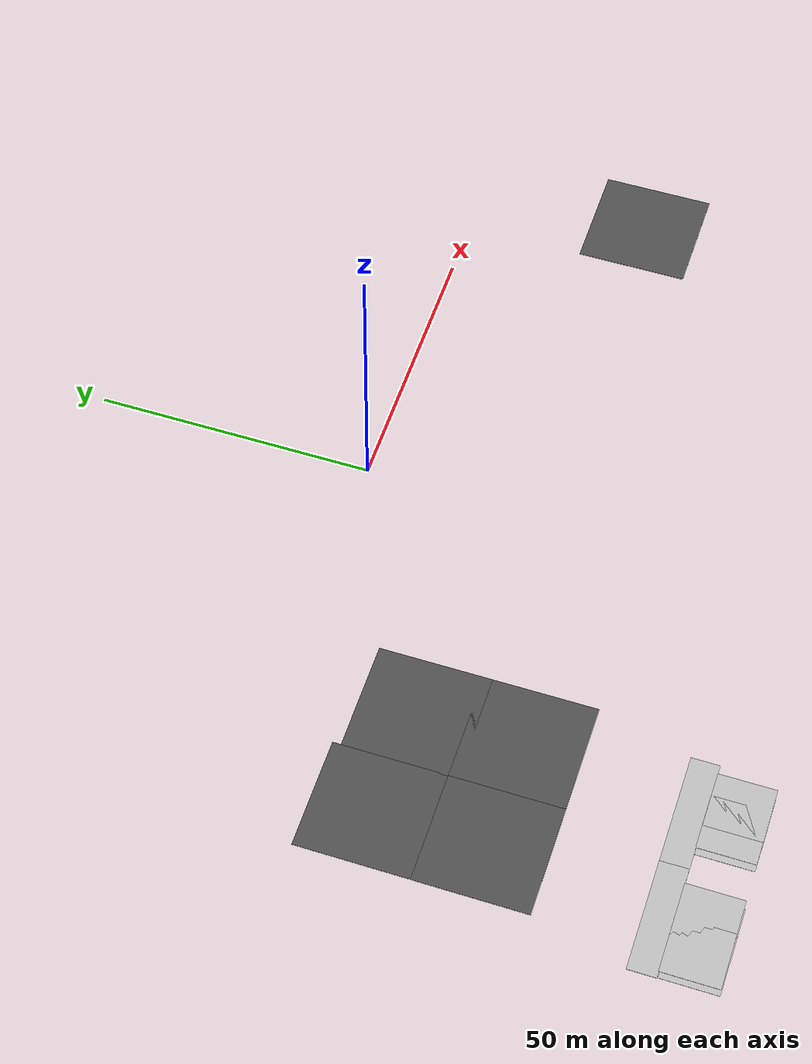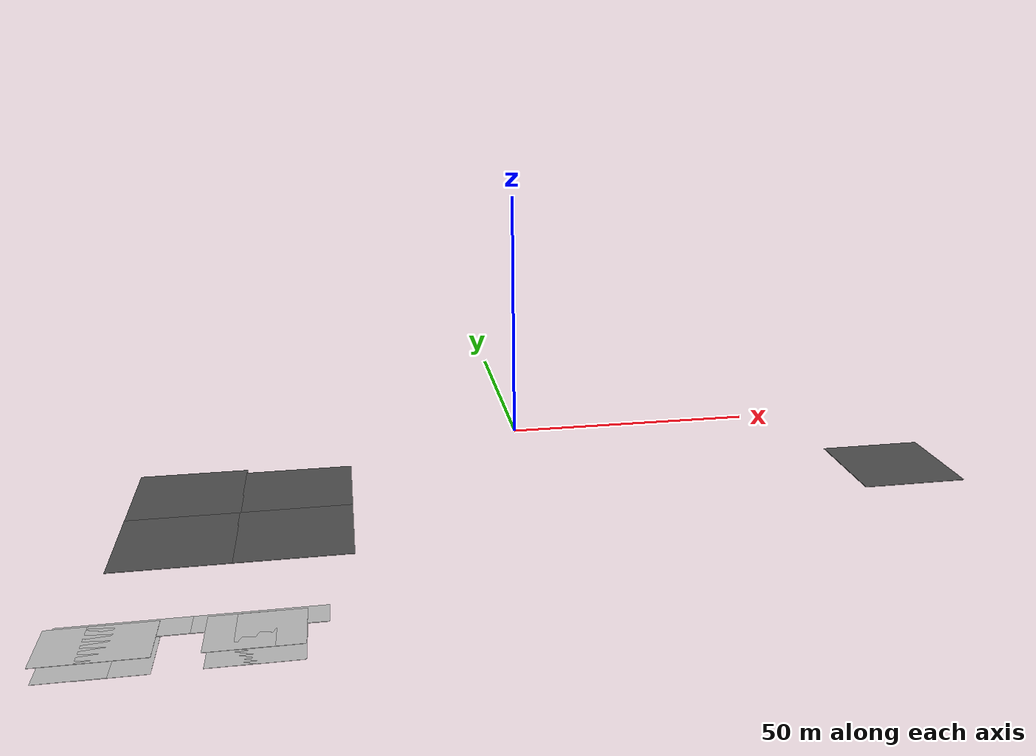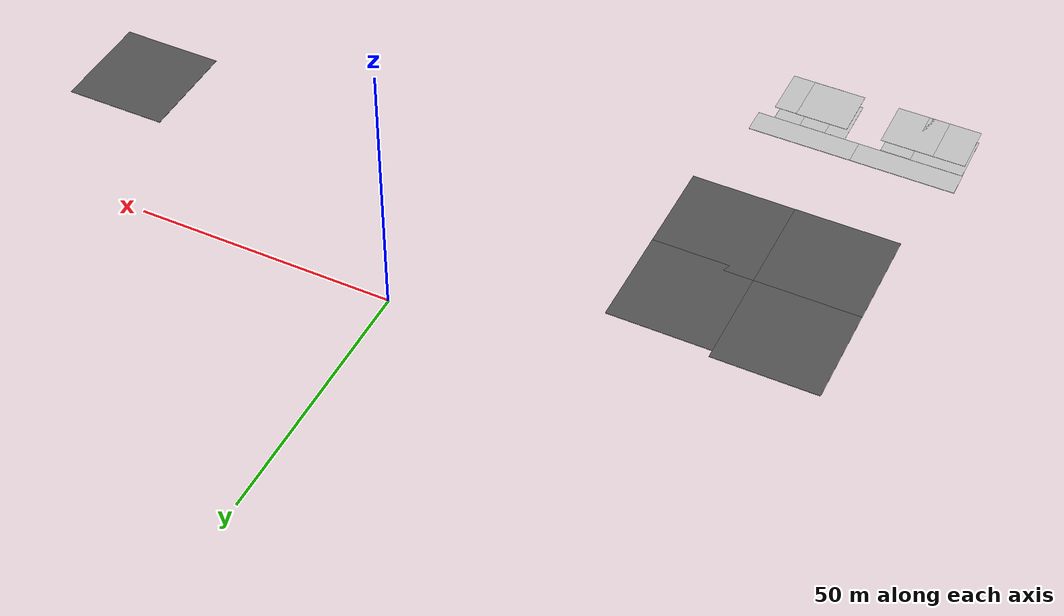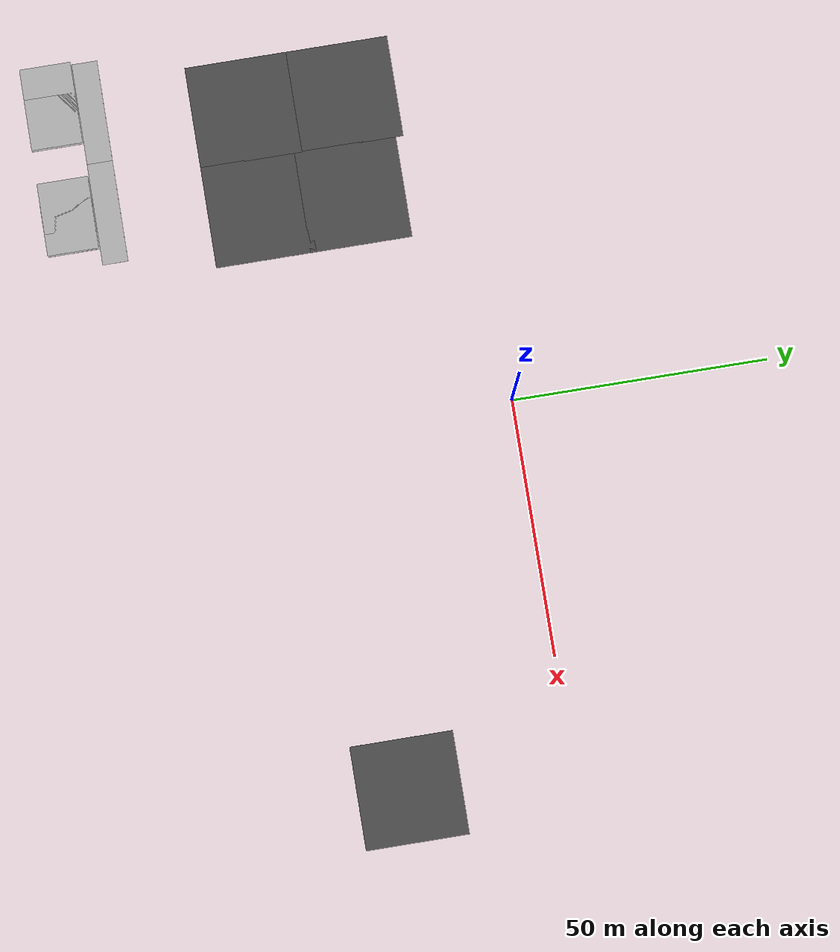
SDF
<sdf version="1.6">
 <world name="default">
  <model name="asphalt_plane_5">
   <static>1</static>
   <link name="link">
    <collision name="collision"><geometry><box><size>20 20 0.1</size></box></geometry></collision>
    <visual name="visual">
     <cast_shadows>0</cast_shadows>
     <geometry><box><size>20 20 0.1</size></box></geometry>
     <material>
      <script>
       <uri>model://asphalt_plane/materials/scripts</uri>
       <uri>model://asphalt_plane/materials/textures</uri>
       <name>vrc/asphalt</name>
      </script>
     </material>
    </visual>
   </link>
   <pose>-64.5294 -22.3652 0 0 -0 0</pose>
  </model>
  <model name="asphalt_plane_6">
   <static>1</static>
   <link name="link">
    <collision name="collision"><geometry><box><size>20 20 0.1</size></box></geometry></collision>
    <visual name="visual">
     <cast_shadows>0</cast_shadows>
     <geometry><box><size>20 20 0.1</size></box></geometry>
     <material>
      <script>
       <uri>model://asphalt_plane/materials/scripts</uri>
       <uri>model://asphalt_plane/materials/textures</uri>
       <name>vrc/asphalt</name>
      </script>
     </material>
    </visual>
   </link>
   <pose>-64.5489 -42.3307 0 0 -0 0</pose>
  </model>
  <model name="asphalt_plane_12">
   <static>1</static>
   <link name="link">
    <collision name="collision"><geometry><box><size>20 20 0.1</size></box></geometry></collision>
    <visual name="visual">
     <cast_shadows>0</cast_shadows>
     <geometry><box><size>20 20 0.1</size></box></geometry>
     <material>
      <script>
       <uri>model://asphalt_plane/materials/scripts</uri>
       <uri>model://asphalt_plane/materials/textures</uri>
       <name>vrc/asphalt</name>
      </script>
     </material>
    </visual>
   </link>
   <pose>-44.6971 -23.8447 0 0 -0 0</pose>
  </model>
  <model name="asphalt_plane_13">
   <static>1</static>
   <link name="link">
    <collision name="collision"><geometry><box><size>20 20 0.1</size></box></geometry></collision>
    <visual name="visual">
     <cast_shadows>0</cast_shadows>
     <geometry><box><size>20 20 0.1</size></box></geometry>
     <material>
      <script>
       <uri>model://asphalt_plane/materials/scripts</uri>
       <uri>model://asphalt_plane/materials/textures</uri>
       <name>vrc/asphalt</name>
      </script>
     </material>
    </visual>
   </link>
   <pose>-44.7034 -42.3237 0 0 -0 0</pose>
  </model>
  <model name="asphalt_plane">
   <static>1</static>
   <link name="link">
    <collision name="collision"><geometry><box><size>20 20 0.1</size></box></geometry></collision>
    <visual name="visual">
     <cast_shadows>0</cast_shadows>
     <geometry><box><size>20 20 0.1</size></box></geometry>
     <material>
      <script>
       <uri>model://asphalt_plane/materials/scripts</uri>
       <uri>model://asphalt_plane/materials/textures</uri>
       <name>vrc/asphalt</name>
      </script>
     </material>
    </visual>
   </link>
   <pose>70.7475 -31.5972 0 0 -0 0</pose>
  </model>
  <model name="Floor_20">
   <link name="main">
    <pose>0 0 0.01 0 -0 0</pose>
    <collision name="main_Collision"><geometry><box><size>10 10 0.05</size></box></geometry></collision>
    <visual name="main_Visual">
     <geometry><box><size>10 10 0.05</size></box></geometry>
     <material>
      <script>
       <uri>model://Floor_small/materials/scripts</uri>
       <uri>model://Floor_small/materials/textures</uri>
       <name>floor</name>
      </script>
     </material>
    </visual>
   </link>
   <static>1</static>
   <pose>-47.0243 -79.0861 0 0 -0 0</pose>
  </model>
  <model name="Floor_22">
   <link name="main">
    <pose>0 0 0.01 0 -0 0</pose>
    <collision name="main_Collision"><geometry><box><size>10 10 0.05</size></box></geometry></collision>
    <visual name="main_Visual">
     <geometry><box><size>10 10 0.05</size></box></geometry>
     <material>
      <script>
       <uri>model://Floor_small/materials/scripts</uri>
       <uri>model://Floor_small/materials/textures</uri>
       <name>floor</name>
      </script>
     </material>
    </visual>
   </link>
   <static>1</static>
   <pose>-51.0111 -79.0401 0 0 -0 0</pose>
  </model>
  <model name="Floor_24">
   <link name="main">
    <pose>0 0 0.01 0 -0 0</pose>
    <collision name="main_Collision"><geometry><box><size>10 10 0.05</size></box></geometry></collision>
    <visual name="main_Visual">
     <geometry><box><size>10 10 0.05</size></box></geometry>
     <material>
      <script>
       <uri>model://Floor_small/materials/scripts</uri>
       <uri>model://Floor_small/materials/textures</uri>
       <name>floor</name>
      </script>
     </material>
    </visual>
   </link>
   <static>1</static>
   <pose>-73.7245 -79.0769 0 0 -0 0</pose>
  </model>
  <model name="Floor_26">
   <link name="main">
    <pose>0 0 0.01 0 -0 0</pose>
    <collision name="main_Collision"><geometry><box><size>10 10 0.05</size></box></geometry></collision>
    <visual name="main_Visual">
     <geometry><box><size>10 10 0.05</size></box></geometry>
     <material>
      <script>
       <uri>model://Floor_small/materials/scripts</uri>
       <uri>model://Floor_small/materials/textures</uri>
       <name>floor</name>
      </script>
     </material>
    </visual>
   </link>
   <static>1</static>
   <pose>-67.9802 -79.1548 0 0 -0 0</pose>
  </model>
  <model name="outdoor_plane_clone">
   <static>1</static>
   <link name="link">
    <collision name="collision"><geometry><box><size>5 20 0.1</size></box></geometry></collision>
    <visual name="visual">
     <cast_shadows>0</cast_shadows>
     <geometry><box><size>5 20 0.1</size></box></geometry>
     <material>
      <script>
       <uri>model://outdoor_plane/materials/scripts</uri>
       <uri>model://outdoor_plane/materials/textures</uri>
       <name>outds/Image</name>
      </script>
     </material>
    </visual>
   </link>
   <pose>-48.8451 -71.5216 0 0 -0 1.57079</pose>
  </model>
  <model name="Floor_0">
   <link name="main">
    <pose>0 0 0.01 0 -0 0</pose>
    <collision name="main_Collision"><geometry><box><size>5 5 0.05</size></box></geometry></collision>
    <visual name="main_Visual">
     <geometry><box><size>5 5 0.05</size></box></geometry>
     <material>
      <script>
       <uri>model://Floor_verysmall/materials/scripts</uri>
       <uri>model://Floor_verysmall/materials/textures</uri>
       <name>floor</name>
      </script>
     </material>
    </visual>
   </link>
   <static>1</static>
   <pose>-44.5634 -76.0712 0 0 -0 0</pose>
  </model>
  <model name="outdoor_plane_clone_clone_0">
   <static>1</static>
   <link name="link">
    <collision name="collision"><geometry><box><size>5 20 0.1</size></box></geometry></collision>
    <visual name="visual">
     <cast_shadows>0</cast_shadows>
     <geometry><box><size>5 20 0.1</size></box></geometry>
     <material>
      <script>
       <uri>model://outdoor_plane/materials/scripts</uri>
       <uri>model://outdoor_plane/materials/textures</uri>
       <name>outds/Image</name>
      </script>
     </material>
    </visual>
   </link>
   <pose>-68.8133 -71.5144 0 0 -0 1.57079</pose>
  </model>
  <model name="Floor_2">
   <link name="main">
    <pose>0 0 0.01 0 -0 0</pose>
    <collision name="main_Collision"><geometry><box><size>5 5 0.05</size></box></geometry></collision>
    <visual name="main_Visual">
     <geometry><box><size>5 5 0.05</size></box></geometry>
     <material>
      <script>
       <uri>model://Floor_verysmall/materials/scripts</uri>
       <uri>model://Floor_verysmall/materials/textures</uri>
       <name>floor</name>
      </script>
     </material>
    </visual>
   </link>
   <static>1</static>
   <pose>-71.0255 -74.8631 0 0 -0 0</pose>
  </model>
  <model name="Floor_3_clone">
   <link name="main">
    <pose>0 0 0.01 0 -0 0</pose>
    <collision name="main_Collision"><geometry><box><size>10 10 0.05</size></box></geometry></collision>
    <visual name="main_Visual">
     <geometry><box><size>10 10 0.05</size></box></geometry>
     <material>
      <script>
       <uri>model://Floor_small/materials/scripts</uri>
       <uri>model://Floor_small/materials/textures</uri>
       <name>floor</name>
      </script>
     </material>
    </visual>
   </link>
   <static>1</static>
   <pose>-67.7786 -79.0088 2.5 0 -0 0</pose>
  </model>
  <model name="Floor_3_clone_0">
   <link name="main">
    <pose>0 0 0.01 0 -0 0</pose>
    <collision name="main_Collision"><geometry><box><size>10 10 0.05</size></box></geometry></collision>
    <visual name="main_Visual">
     <geometry><box><size>10 10 0.05</size></box></geometry>
     <material>
      <script>
       <uri>model://Floor_small/materials/scripts</uri>
       <uri>model://Floor_small/materials/textures</uri>
       <name>floor</name>
      </script>
     </material>
    </visual>
   </link>
   <static>1</static>
   <pose>-73.8431 -78.9977 2.5 0 -0 0</pose>
  </model>
  <model name="Floor_3_clone_3">
   <link name="main">
    <pose>0 0 0.01 0 -0 0</pose>
    <collision name="main_Collision"><geometry><box><size>10 10 0.05</size></box></geometry></collision>
    <visual name="main_Visual">
     <geometry><box><size>10 10 0.05</size></box></geometry>
     <material>
      <script>
       <uri>model://Floor_small/materials/scripts</uri>
       <uri>model://Floor_small/materials/textures</uri>
       <name>floor</name>
      </script>
     </material>
    </visual>
   </link>
   <static>1</static>
   <pose>-46.8814 -79.0746 2.5 0 -0 0</pose>
  </model>
  <model name="Floor_3_clone_4">
   <link name="main">
    <pose>0 0 0.01 0 -0 0</pose>
    <collision name="main_Collision"><geometry><box><size>10 10 0.05</size></box></geometry></collision>
    <visual name="main_Visual">
     <geometry><box><size>10 10 0.05</size></box></geometry>
     <material>
      <script>
       <uri>model://Floor_small/materials/scripts</uri>
       <uri>model://Floor_small/materials/textures</uri>
       <name>floor</name>
      </script>
     </material>
    </visual>
   </link>
   <static>1</static>
   <pose>-51.1264 -79.0339 2.5 0 -0 0</pose>
  </model>
 </world>
</sdf>
